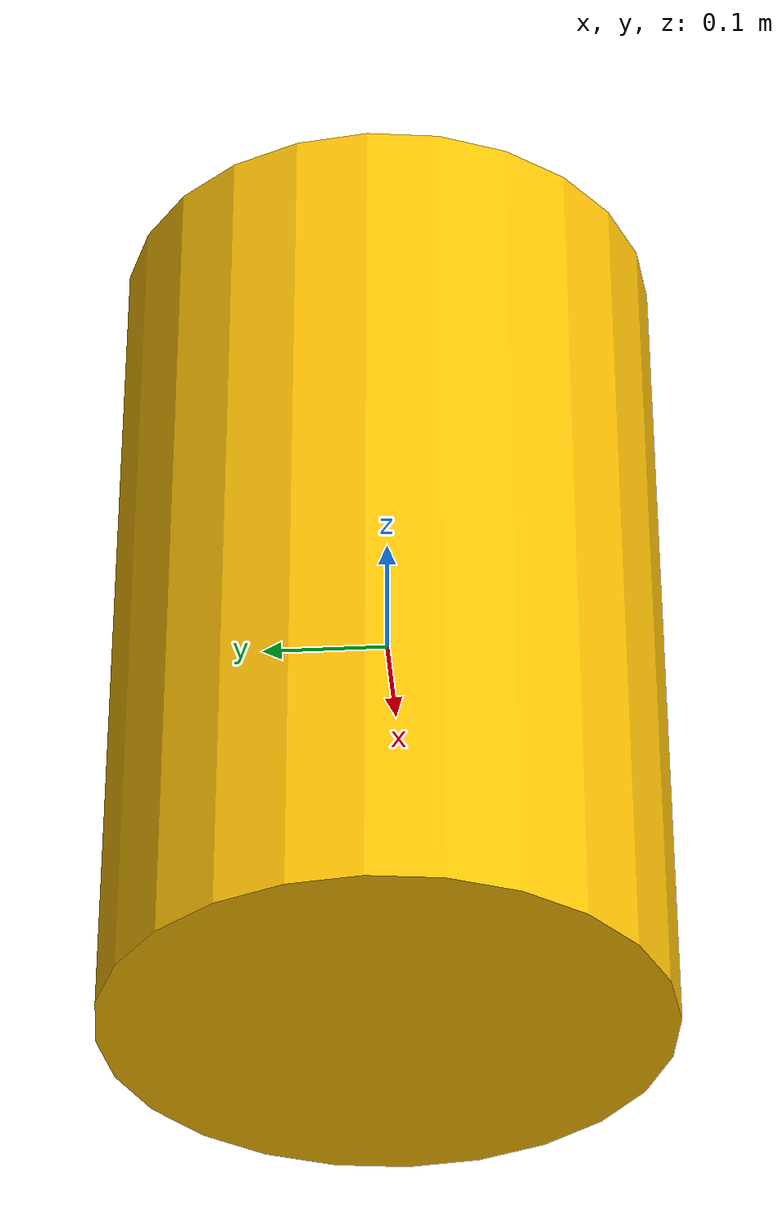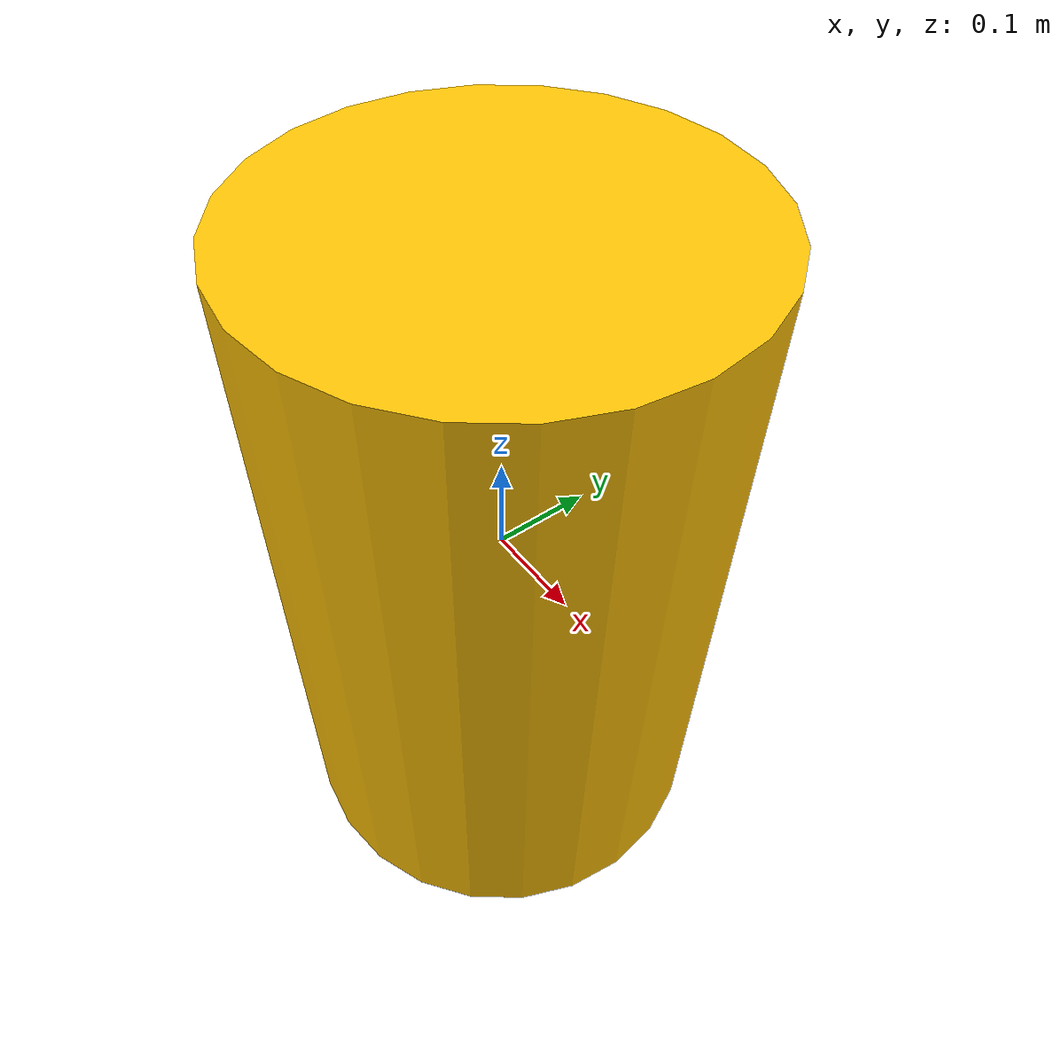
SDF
<?xml version="1.0"?>
<sdf version="1.9">
  <model name="kki_obstacle_yellow">
    <static>true</static>
    <link name="base_link">
      <visual name="obstacle_visual">
        <geometry>
          <cylinder>
            <radius>0.22</radius>
            <length>0.70</length>
          </cylinder>
        </geometry>
        <material>
          <ambient>1.0 0.76 0.02 1</ambient>
          <diffuse>1.0 0.76 0.02 1</diffuse>
        </material>
      </visual>
      <collision name="collision">
        <!-- Cylindrical collision follows the obstacle visual so hit detection
             happens on the round obstacle body, not a square proxy. -->
        <geometry>
          <cylinder>
            <radius>0.22</radius>
            <length>0.70</length>
          </cylinder>
        </geometry>
      </collision>
      <sensor name="object_contact_sensor" type="contact">
        <!-- Object-side contact catches obstacle hits even if the hull sensor misses one frame. -->
        <contact>
          <collision>collision</collision>
          <topic>/kki/collisions/objects</topic>
        </contact>
        <always_on>true</always_on>
        <update_rate>30</update_rate>
      </sensor>
    </link>
  </model>
</sdf>
